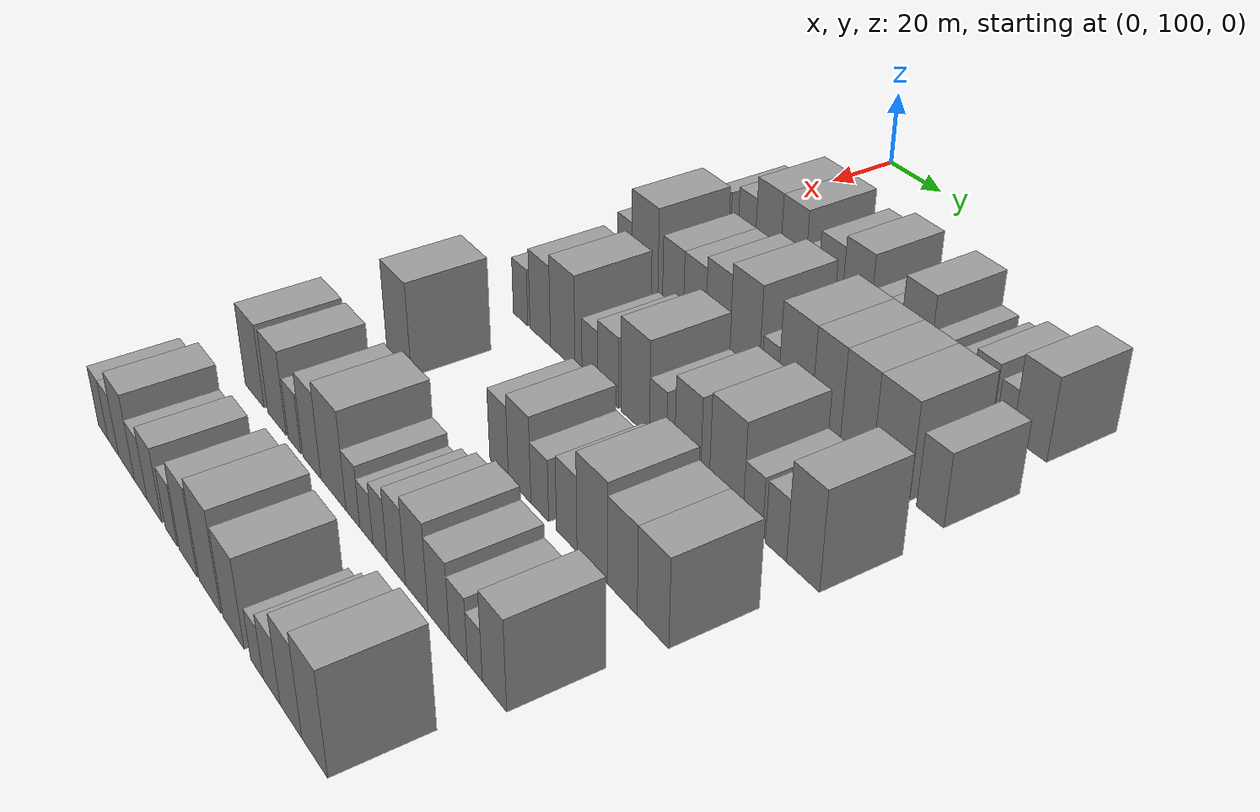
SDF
<sdf version="1.6">
 <world name="default">
  <model name="building_79">
   <static>1</static>
   <pose>50.0000 106.6499 0 0.000000 0.000000 0.000000</pose>
   <link name="link">
    <pose>0 0 6.00 0 0 0</pose>
    <collision name="collision"><geometry><box><size>20.0000 4.8474 12.0000</size></box></geometry></collision>
    <visual name="visual">
     <cast_shadows>0</cast_shadows>
     <geometry><box><size>20.0000 4.8474 12.0000</size></box></geometry>
     <material>
      <script>
       <uri>model://grey_wall/materials/scripts</uri>
       <uri>model://grey_wall/materials/textures</uri>
       <name>vrc/grey_wall</name>
      </script>
     </material>
    </visual>
   </link>
  </model>
  <model name="building_80">
   <static>1</static>
   <pose>50.0000 115.6817 0 0.000000 0.000000 0.000000</pose>
   <link name="link">
    <pose>0 0 7.50 0 0 0</pose>
    <collision name="collision"><geometry><box><size>20.0000 7.2161 15.0000</size></box></geometry></collision>
    <visual name="visual">
     <cast_shadows>0</cast_shadows>
     <geometry><box><size>20.0000 7.2161 15.0000</size></box></geometry>
     <material>
      <script>
       <uri>model://grey_wall/materials/scripts</uri>
       <uri>model://grey_wall/materials/textures</uri>
       <name>vrc/grey_wall</name>
      </script>
     </material>
    </visual>
   </link>
  </model>
  <model name="building_81">
   <static>1</static>
   <pose>50.0000 124.3143 0 0.000000 0.000000 0.000000</pose>
   <link name="link">
    <pose>0 0 10.50 0 0 0</pose>
    <collision name="collision"><geometry><box><size>20.0000 10.0491 21.0000</size></box></geometry></collision>
    <visual name="visual">
     <cast_shadows>0</cast_shadows>
     <geometry><box><size>20.0000 10.0491 21.0000</size></box></geometry>
     <material>
      <script>
       <uri>model://grey_wall/materials/scripts</uri>
       <uri>model://grey_wall/materials/textures</uri>
       <name>vrc/grey_wall</name>
      </script>
     </material>
    </visual>
   </link>
  </model>
  <model name="building_82">
   <static>1</static>
   <pose>50.0000 134.2049 0 0.000000 0.000000 0.000000</pose>
   <link name="link">
    <pose>0 0 10.50 0 0 0</pose>
    <collision name="collision"><geometry><box><size>20.0000 9.7322 21.0000</size></box></geometry></collision>
    <visual name="visual">
     <cast_shadows>0</cast_shadows>
     <geometry><box><size>20.0000 9.7322 21.0000</size></box></geometry>
     <material>
      <script>
       <uri>model://grey_wall/materials/scripts</uri>
       <uri>model://grey_wall/materials/textures</uri>
       <name>vrc/grey_wall</name>
      </script>
     </material>
    </visual>
   </link>
  </model>
  <model name="building_83">
   <static>1</static>
   <pose>50.0000 141.4858 0 0.000000 0.000000 0.000000</pose>
   <link name="link">
    <pose>0 0 6.00 0 0 0</pose>
    <collision name="collision"><geometry><box><size>20.0000 4.8296 12.0000</size></box></geometry></collision>
    <visual name="visual">
     <cast_shadows>0</cast_shadows>
     <geometry><box><size>20.0000 4.8296 12.0000</size></box></geometry>
     <material>
      <script>
       <uri>model://grey_wall/materials/scripts</uri>
       <uri>model://grey_wall/materials/textures</uri>
       <name>vrc/grey_wall</name>
      </script>
     </material>
    </visual>
   </link>
  </model>
  <model name="building_84">
   <static>1</static>
   <pose>50.0000 148.3853 0 0.000000 0.000000 0.000000</pose>
   <link name="link">
    <pose>0 0 9.00 0 0 0</pose>
    <collision name="collision"><geometry><box><size>20.0000 8.9695 18.0000</size></box></geometry></collision>
    <visual name="visual">
     <cast_shadows>0</cast_shadows>
     <geometry><box><size>20.0000 8.9695 18.0000</size></box></geometry>
     <material>
      <script>
       <uri>model://grey_wall/materials/scripts</uri>
       <uri>model://grey_wall/materials/textures</uri>
       <name>vrc/grey_wall</name>
      </script>
     </material>
    </visual>
   </link>
  </model>
  <model name="building_85">
   <static>1</static>
   <pose>50.0000 157.9243 0 0.000000 0.000000 0.000000</pose>
   <link name="link">
    <pose>0 0 10.50 0 0 0</pose>
    <collision name="collision"><geometry><box><size>20.0000 10.1083 21.0000</size></box></geometry></collision>
    <visual name="visual">
     <cast_shadows>0</cast_shadows>
     <geometry><box><size>20.0000 10.1083 21.0000</size></box></geometry>
     <material>
      <script>
       <uri>model://grey_wall/materials/scripts</uri>
       <uri>model://grey_wall/materials/textures</uri>
       <name>vrc/grey_wall</name>
      </script>
     </material>
    </visual>
   </link>
  </model>
  <model name="building_86">
   <static>1</static>
   <pose>50.0000 165.3802 0 0.000000 0.000000 0.000000</pose>
   <link name="link">
    <pose>0 0 6.00 0 0 0</pose>
    <collision name="collision"><geometry><box><size>20.0000 4.8035 12.0000</size></box></geometry></collision>
    <visual name="visual">
     <cast_shadows>0</cast_shadows>
     <geometry><box><size>20.0000 4.8035 12.0000</size></box></geometry>
     <material>
      <script>
       <uri>model://grey_wall/materials/scripts</uri>
       <uri>model://grey_wall/materials/textures</uri>
       <name>vrc/grey_wall</name>
      </script>
     </material>
    </visual>
   </link>
  </model>
  <model name="building_87">
   <static>1</static>
   <pose>50.0000 170.5307 0 0.000000 0.000000 0.000000</pose>
   <link name="link">
    <pose>0 0 6.00 0 0 0</pose>
    <collision name="collision"><geometry><box><size>20.0000 5.4974 12.0000</size></box></geometry></collision>
    <visual name="visual">
     <cast_shadows>0</cast_shadows>
     <geometry><box><size>20.0000 5.4974 12.0000</size></box></geometry>
     <material>
      <script>
       <uri>model://grey_wall/materials/scripts</uri>
       <uri>model://grey_wall/materials/textures</uri>
       <name>vrc/grey_wall</name>
      </script>
     </material>
    </visual>
   </link>
  </model>
  <model name="building_88">
   <static>1</static>
   <pose>50.0000 178.2708 0 0.000000 0.000000 0.000000</pose>
   <link name="link">
    <pose>0 0 10.50 0 0 0</pose>
    <collision name="collision"><geometry><box><size>20.0000 9.9829 21.0000</size></box></geometry></collision>
    <visual name="visual">
     <cast_shadows>0</cast_shadows>
     <geometry><box><size>20.0000 9.9829 21.0000</size></box></geometry>
     <material>
      <script>
       <uri>model://grey_wall/materials/scripts</uri>
       <uri>model://grey_wall/materials/textures</uri>
       <name>vrc/grey_wall</name>
      </script>
     </material>
    </visual>
   </link>
  </model>
  <model name="building_89">
   <static>1</static>
   <pose>50.0000 185.9252 0 0.000000 0.000000 0.000000</pose>
   <link name="link">
    <pose>0 0 6.00 0 0 0</pose>
    <collision name="collision"><geometry><box><size>20.0000 5.3258 12.0000</size></box></geometry></collision>
    <visual name="visual">
     <cast_shadows>0</cast_shadows>
     <geometry><box><size>20.0000 5.3258 12.0000</size></box></geometry>
     <material>
      <script>
       <uri>model://grey_wall/materials/scripts</uri>
       <uri>model://grey_wall/materials/textures</uri>
       <name>vrc/grey_wall</name>
      </script>
     </material>
    </visual>
   </link>
  </model>
  <model name="building_90">
   <static>1</static>
   <pose>50.0000 194.1657 0 0.000000 0.000000 0.000000</pose>
   <link name="link">
    <pose>0 0 6.00 0 0 0</pose>
    <collision name="collision"><geometry><box><size>20.0000 5.1552 12.0000</size></box></geometry></collision>
    <visual name="visual">
     <cast_shadows>0</cast_shadows>
     <geometry><box><size>20.0000 5.1552 12.0000</size></box></geometry>
     <material>
      <script>
       <uri>model://grey_wall/materials/scripts</uri>
       <uri>model://grey_wall/materials/textures</uri>
       <name>vrc/grey_wall</name>
      </script>
     </material>
    </visual>
   </link>
  </model>
  <model name="building_91">
   <static>1</static>
   <pose>50.0000 200.2985 0 0.000000 0.000000 0.000000</pose>
   <link name="link">
    <pose>0 0 7.50 0 0 0</pose>
    <collision name="collision"><geometry><box><size>20.0000 7.1105 15.0000</size></box></geometry></collision>
    <visual name="visual">
     <cast_shadows>0</cast_shadows>
     <geometry><box><size>20.0000 7.1105 15.0000</size></box></geometry>
     <material>
      <script>
       <uri>model://grey_wall/materials/scripts</uri>
       <uri>model://grey_wall/materials/textures</uri>
       <name>vrc/grey_wall</name>
      </script>
     </material>
    </visual>
   </link>
  </model>
  <model name="building_92">
   <static>1</static>
   <pose>50.0000 207.3197 0 0.000000 0.000000 0.000000</pose>
   <link name="link">
    <pose>0 0 6.00 0 0 0</pose>
    <collision name="collision"><geometry><box><size>20.0000 4.9317 12.0000</size></box></geometry></collision>
    <visual name="visual">
     <cast_shadows>0</cast_shadows>
     <geometry><box><size>20.0000 4.9317 12.0000</size></box></geometry>
     <material>
      <script>
       <uri>model://grey_wall/materials/scripts</uri>
       <uri>model://grey_wall/materials/textures</uri>
       <name>vrc/grey_wall</name>
      </script>
     </material>
    </visual>
   </link>
  </model>
  <model name="building_93">
   <static>1</static>
   <pose>50.0000 214.8084 0 0.000000 0.000000 0.000000</pose>
   <link name="link">
    <pose>0 0 10.50 0 0 0</pose>
    <collision name="collision"><geometry><box><size>20.0000 10.0457 21.0000</size></box></geometry></collision>
    <visual name="visual">
     <cast_shadows>0</cast_shadows>
     <geometry><box><size>20.0000 10.0457 21.0000</size></box></geometry>
     <material>
      <script>
       <uri>model://grey_wall/materials/scripts</uri>
       <uri>model://grey_wall/materials/textures</uri>
       <name>vrc/grey_wall</name>
      </script>
     </material>
    </visual>
   </link>
  </model>
  <model name="building_208">
   <static>1</static>
   <pose>82.0000 109.8524 0 0.000000 0.000000 0.000000</pose>
   <link name="link">
    <pose>0 0 7.50 0 0 0</pose>
    <collision name="collision"><geometry><box><size>20.0000 6.1634 15.0000</size></box></geometry></collision>
    <visual name="visual">
     <cast_shadows>0</cast_shadows>
     <geometry><box><size>20.0000 6.1634 15.0000</size></box></geometry>
     <material>
      <script>
       <uri>model://grey_wall/materials/scripts</uri>
       <uri>model://grey_wall/materials/textures</uri>
       <name>vrc/grey_wall</name>
      </script>
     </material>
    </visual>
   </link>
  </model>
  <model name="building_209">
   <static>1</static>
   <pose>82.0000 118.5898 0 0.000000 0.000000 0.000000</pose>
   <link name="link">
    <pose>0 0 12.00 0 0 0</pose>
    <collision name="collision"><geometry><box><size>20.0000 11.3113 24.0000</size></box></geometry></collision>
    <visual name="visual">
     <cast_shadows>0</cast_shadows>
     <geometry><box><size>20.0000 11.3113 24.0000</size></box></geometry>
     <material>
      <script>
       <uri>model://grey_wall/materials/scripts</uri>
       <uri>model://grey_wall/materials/textures</uri>
       <name>vrc/grey_wall</name>
      </script>
     </material>
    </visual>
   </link>
  </model>
  <model name="building_210">
   <static>1</static>
   <pose>82.0000 130.5732 0 0.000000 0.000000 0.000000</pose>
   <link name="link">
    <pose>0 0 9.00 0 0 0</pose>
    <collision name="collision"><geometry><box><size>20.0000 8.6554 18.0000</size></box></geometry></collision>
    <visual name="visual">
     <cast_shadows>0</cast_shadows>
     <geometry><box><size>20.0000 8.6554 18.0000</size></box></geometry>
     <material>
      <script>
       <uri>model://grey_wall/materials/scripts</uri>
       <uri>model://grey_wall/materials/textures</uri>
       <name>vrc/grey_wall</name>
      </script>
     </material>
    </visual>
   </link>
  </model>
  <model name="building_211">
   <static>1</static>
   <pose>82.0000 139.3551 0 0.000000 0.000000 0.000000</pose>
   <link name="link">
    <pose>0 0 9.00 0 0 0</pose>
    <collision name="collision"><geometry><box><size>20.0000 8.9084 18.0000</size></box></geometry></collision>
    <visual name="visual">
     <cast_shadows>0</cast_shadows>
     <geometry><box><size>20.0000 8.9084 18.0000</size></box></geometry>
     <material>
      <script>
       <uri>model://grey_wall/materials/scripts</uri>
       <uri>model://grey_wall/materials/textures</uri>
       <name>vrc/grey_wall</name>
      </script>
     </material>
    </visual>
   </link>
  </model>
  <model name="building_212">
   <static>1</static>
   <pose>82.0000 148.4932 0 0.000000 0.000000 0.000000</pose>
   <link name="link">
    <pose>0 0 10.50 0 0 0</pose>
    <collision name="collision"><geometry><box><size>20.0000 9.3679 21.0000</size></box></geometry></collision>
    <visual name="visual">
     <cast_shadows>0</cast_shadows>
     <geometry><box><size>20.0000 9.3679 21.0000</size></box></geometry>
     <material>
      <script>
       <uri>model://grey_wall/materials/scripts</uri>
       <uri>model://grey_wall/materials/textures</uri>
       <name>vrc/grey_wall</name>
      </script>
     </material>
    </visual>
   </link>
  </model>
  <model name="building_213">
   <static>1</static>
   <pose>82.0000 158.6790 0 0.000000 0.000000 0.000000</pose>
   <link name="link">
    <pose>0 0 12.00 0 0 0</pose>
    <collision name="collision"><geometry><box><size>20.0000 11.0038 24.0000</size></box></geometry></collision>
    <visual name="visual">
     <cast_shadows>0</cast_shadows>
     <geometry><box><size>20.0000 11.0038 24.0000</size></box></geometry>
     <material>
      <script>
       <uri>model://grey_wall/materials/scripts</uri>
       <uri>model://grey_wall/materials/textures</uri>
       <name>vrc/grey_wall</name>
      </script>
     </material>
    </visual>
   </link>
  </model>
  <model name="building_214">
   <static>1</static>
   <pose>82.0000 168.1587 0 0.000000 0.000000 0.000000</pose>
   <link name="link">
    <pose>0 0 6.00 0 0 0</pose>
    <collision name="collision"><geometry><box><size>20.0000 5.9555 12.0000</size></box></geometry></collision>
    <visual name="visual">
     <cast_shadows>0</cast_shadows>
     <geometry><box><size>20.0000 5.9555 12.0000</size></box></geometry>
     <material>
      <script>
       <uri>model://grey_wall/materials/scripts</uri>
       <uri>model://grey_wall/materials/textures</uri>
       <name>vrc/grey_wall</name>
      </script>
     </material>
    </visual>
   </link>
  </model>
  <model name="building_215">
   <static>1</static>
   <pose>82.0000 176.9560 0 0.000000 0.000000 0.000000</pose>
   <link name="link">
    <pose>0 0 12.00 0 0 0</pose>
    <collision name="collision"><geometry><box><size>20.0000 11.6392 24.0000</size></box></geometry></collision>
    <visual name="visual">
     <cast_shadows>0</cast_shadows>
     <geometry><box><size>20.0000 11.6392 24.0000</size></box></geometry>
     <material>
      <script>
       <uri>model://grey_wall/materials/scripts</uri>
       <uri>model://grey_wall/materials/textures</uri>
       <name>vrc/grey_wall</name>
      </script>
     </material>
    </visual>
   </link>
  </model>
  <model name="building_216">
   <static>1</static>
   <pose>82.0000 187.6401 0 0.000000 0.000000 0.000000</pose>
   <link name="link">
    <pose>0 0 12.00 0 0 0</pose>
    <collision name="collision"><geometry><box><size>20.0000 9.7292 24.0000</size></box></geometry></collision>
    <visual name="visual">
     <cast_shadows>0</cast_shadows>
     <geometry><box><size>20.0000 9.7292 24.0000</size></box></geometry>
     <material>
      <script>
       <uri>model://grey_wall/materials/scripts</uri>
       <uri>model://grey_wall/materials/textures</uri>
       <name>vrc/grey_wall</name>
      </script>
     </material>
    </visual>
   </link>
  </model>
  <model name="building_217">
   <static>1</static>
   <pose>82.0000 197.6625 0 0.000000 0.000000 0.000000</pose>
   <link name="link">
    <pose>0 0 12.00 0 0 0</pose>
    <collision name="collision"><geometry><box><size>20.0000 10.3156 24.0000</size></box></geometry></collision>
    <visual name="visual">
     <cast_shadows>0</cast_shadows>
     <geometry><box><size>20.0000 10.3156 24.0000</size></box></geometry>
     <material>
      <script>
       <uri>model://grey_wall/materials/scripts</uri>
       <uri>model://grey_wall/materials/textures</uri>
       <name>vrc/grey_wall</name>
      </script>
     </material>
    </visual>
   </link>
  </model>
  <model name="building_218">
   <static>1</static>
   <pose>82.0000 208.6735 0 0.000000 0.000000 0.000000</pose>
   <link name="link">
    <pose>0 0 12.00 0 0 0</pose>
    <collision name="collision"><geometry><box><size>20.0000 11.7064 24.0000</size></box></geometry></collision>
    <visual name="visual">
     <cast_shadows>0</cast_shadows>
     <geometry><box><size>20.0000 11.7064 24.0000</size></box></geometry>
     <material>
      <script>
       <uri>model://grey_wall/materials/scripts</uri>
       <uri>model://grey_wall/materials/textures</uri>
       <name>vrc/grey_wall</name>
      </script>
     </material>
    </visual>
   </link>
  </model>
  <model name="building_219">
   <static>1</static>
   <pose>82.0000 220.5363 0 0.000000 0.000000 0.000000</pose>
   <link name="link">
    <pose>0 0 9.00 0 0 0</pose>
    <collision name="collision"><geometry><box><size>20.0000 8.0192 18.0000</size></box></geometry></collision>
    <visual name="visual">
     <cast_shadows>0</cast_shadows>
     <geometry><box><size>20.0000 8.0192 18.0000</size></box></geometry>
     <material>
      <script>
       <uri>model://grey_wall/materials/scripts</uri>
       <uri>model://grey_wall/materials/textures</uri>
       <name>vrc/grey_wall</name>
      </script>
     </material>
    </visual>
   </link>
  </model>
  <model name="building_335">
   <static>1</static>
   <pose>114.0000 115.1809 0 0.000000 0.000000 0.000000</pose>
   <link name="link">
    <pose>0 0 7.50 0 0 0</pose>
    <collision name="collision"><geometry><box><size>20.0000 6.7119 15.0000</size></box></geometry></collision>
    <visual name="visual">
     <cast_shadows>0</cast_shadows>
     <geometry><box><size>20.0000 6.7119 15.0000</size></box></geometry>
     <material>
      <script>
       <uri>model://grey_wall/materials/scripts</uri>
       <uri>model://grey_wall/materials/textures</uri>
       <name>vrc/grey_wall</name>
      </script>
     </material>
    </visual>
   </link>
  </model>
  <model name="building_336">
   <static>1</static>
   <pose>114.0000 124.1312 0 0.000000 0.000000 0.000000</pose>
   <link name="link">
    <pose>0 0 10.50 0 0 0</pose>
    <collision name="collision"><geometry><box><size>20.0000 9.1886 21.0000</size></box></geometry></collision>
    <visual name="visual">
     <cast_shadows>0</cast_shadows>
     <geometry><box><size>20.0000 9.1886 21.0000</size></box></geometry>
     <material>
      <script>
       <uri>model://grey_wall/materials/scripts</uri>
       <uri>model://grey_wall/materials/textures</uri>
       <name>vrc/grey_wall</name>
      </script>
     </material>
    </visual>
   </link>
  </model>
  <model name="building_337">
   <static>1</static>
   <pose>114.0000 134.0255 0 0.000000 0.000000 0.000000</pose>
   <link name="link">
    <pose>0 0 12.00 0 0 0</pose>
    <collision name="collision"><geometry><box><size>20.0000 10.6000 24.0000</size></box></geometry></collision>
    <visual name="visual">
     <cast_shadows>0</cast_shadows>
     <geometry><box><size>20.0000 10.6000 24.0000</size></box></geometry>
     <material>
      <script>
       <uri>model://grey_wall/materials/scripts</uri>
       <uri>model://grey_wall/materials/textures</uri>
       <name>vrc/grey_wall</name>
      </script>
     </material>
    </visual>
   </link>
  </model>
  <model name="building_338">
   <static>1</static>
   <pose>114.0000 145.5345 0 0.000000 0.000000 0.000000</pose>
   <link name="link">
    <pose>0 0 7.50 0 0 0</pose>
    <collision name="collision"><geometry><box><size>20.0000 6.4181 15.0000</size></box></geometry></collision>
    <visual name="visual">
     <cast_shadows>0</cast_shadows>
     <geometry><box><size>20.0000 6.4181 15.0000</size></box></geometry>
     <material>
      <script>
       <uri>model://grey_wall/materials/scripts</uri>
       <uri>model://grey_wall/materials/textures</uri>
       <name>vrc/grey_wall</name>
      </script>
     </material>
    </visual>
   </link>
  </model>
  <model name="building_339">
   <static>1</static>
   <pose>114.0000 152.9391 0 0.000000 0.000000 0.000000</pose>
   <link name="link">
    <pose>0 0 9.00 0 0 0</pose>
    <collision name="collision"><geometry><box><size>20.0000 8.3911 18.0000</size></box></geometry></collision>
    <visual name="visual">
     <cast_shadows>0</cast_shadows>
     <geometry><box><size>20.0000 8.3911 18.0000</size></box></geometry>
     <material>
      <script>
       <uri>model://grey_wall/materials/scripts</uri>
       <uri>model://grey_wall/materials/textures</uri>
       <name>vrc/grey_wall</name>
      </script>
     </material>
    </visual>
   </link>
  </model>
  <model name="building_340">
   <static>1</static>
   <pose>114.0000 163.6487 0 0.000000 0.000000 0.000000</pose>
   <link name="link">
    <pose>0 0 12.00 0 0 0</pose>
    <collision name="collision"><geometry><box><size>20.0000 11.0280 24.0000</size></box></geometry></collision>
    <visual name="visual">
     <cast_shadows>0</cast_shadows>
     <geometry><box><size>20.0000 11.0280 24.0000</size></box></geometry>
     <material>
      <script>
       <uri>model://grey_wall/materials/scripts</uri>
       <uri>model://grey_wall/materials/textures</uri>
       <name>vrc/grey_wall</name>
      </script>
     </material>
    </visual>
   </link>
  </model>
  <model name="building_341">
   <static>1</static>
   <pose>114.0000 172.3379 0 0.000000 0.000000 0.000000</pose>
   <link name="link">
    <pose>0 0 7.50 0 0 0</pose>
    <collision name="collision"><geometry><box><size>20.0000 6.3503 15.0000</size></box></geometry></collision>
    <visual name="visual">
     <cast_shadows>0</cast_shadows>
     <geometry><box><size>20.0000 6.3503 15.0000</size></box></geometry>
     <material>
      <script>
       <uri>model://grey_wall/materials/scripts</uri>
       <uri>model://grey_wall/materials/textures</uri>
       <name>vrc/grey_wall</name>
      </script>
     </material>
    </visual>
   </link>
  </model>
  <model name="building_342">
   <static>1</static>
   <pose>114.0000 183.1485 0 0.000000 0.000000 0.000000</pose>
   <link name="link">
    <pose>0 0 10.50 0 0 0</pose>
    <collision name="collision"><geometry><box><size>20.0000 9.2711 21.0000</size></box></geometry></collision>
    <visual name="visual">
     <cast_shadows>0</cast_shadows>
     <geometry><box><size>20.0000 9.2711 21.0000</size></box></geometry>
     <material>
      <script>
       <uri>model://grey_wall/materials/scripts</uri>
       <uri>model://grey_wall/materials/textures</uri>
       <name>vrc/grey_wall</name>
      </script>
     </material>
    </visual>
   </link>
  </model>
  <model name="building_343">
   <static>1</static>
   <pose>114.0000 196.5403 0 0.000000 0.000000 0.000000</pose>
   <link name="link">
    <pose>0 0 12.00 0 0 0</pose>
    <collision name="collision"><geometry><box><size>20.0000 11.5125 24.0000</size></box></geometry></collision>
    <visual name="visual">
     <cast_shadows>0</cast_shadows>
     <geometry><box><size>20.0000 11.5125 24.0000</size></box></geometry>
     <material>
      <script>
       <uri>model://grey_wall/materials/scripts</uri>
       <uri>model://grey_wall/materials/textures</uri>
       <name>vrc/grey_wall</name>
      </script>
     </material>
    </visual>
   </link>
  </model>
  <model name="building_344">
   <static>1</static>
   <pose>114.0000 205.4715 0 0.000000 0.000000 0.000000</pose>
   <link name="link">
    <pose>0 0 7.50 0 0 0</pose>
    <collision name="collision"><geometry><box><size>20.0000 6.3498 15.0000</size></box></geometry></collision>
    <visual name="visual">
     <cast_shadows>0</cast_shadows>
     <geometry><box><size>20.0000 6.3498 15.0000</size></box></geometry>
     <material>
      <script>
       <uri>model://grey_wall/materials/scripts</uri>
       <uri>model://grey_wall/materials/textures</uri>
       <name>vrc/grey_wall</name>
      </script>
     </material>
    </visual>
   </link>
  </model>
  <model name="building_345">
   <static>1</static>
   <pose>114.0000 212.9969 0 0.000000 0.000000 0.000000</pose>
   <link name="link">
    <pose>0 0 7.50 0 0 0</pose>
    <collision name="collision"><geometry><box><size>20.0000 6.7010 15.0000</size></box></geometry></collision>
    <visual name="visual">
     <cast_shadows>0</cast_shadows>
     <geometry><box><size>20.0000 6.7010 15.0000</size></box></geometry>
     <material>
      <script>
       <uri>model://grey_wall/materials/scripts</uri>
       <uri>model://grey_wall/materials/textures</uri>
       <name>vrc/grey_wall</name>
      </script>
     </material>
    </visual>
   </link>
  </model>
  <model name="building_346">
   <static>1</static>
   <pose>114.0000 221.4097 0 0.000000 0.000000 0.000000</pose>
   <link name="link">
    <pose>0 0 12.00 0 0 0</pose>
    <collision name="collision"><geometry><box><size>20.0000 10.1246 24.0000</size></box></geometry></collision>
    <visual name="visual">
     <cast_shadows>0</cast_shadows>
     <geometry><box><size>20.0000 10.1246 24.0000</size></box></geometry>
     <material>
      <script>
       <uri>model://grey_wall/materials/scripts</uri>
       <uri>model://grey_wall/materials/textures</uri>
       <name>vrc/grey_wall</name>
      </script>
     </material>
    </visual>
   </link>
  </model>
  <model name="building_450">
   <static>1</static>
   <pose>146.0000 116.7327 0 0.000000 0.000000 0.000000</pose>
   <link name="link">
    <pose>0 0 12.00 0 0 0</pose>
    <collision name="collision"><geometry><box><size>20.0000 11.9639 24.0000</size></box></geometry></collision>
    <visual name="visual">
     <cast_shadows>0</cast_shadows>
     <geometry><box><size>20.0000 11.9639 24.0000</size></box></geometry>
     <material>
      <script>
       <uri>model://grey_wall/materials/scripts</uri>
       <uri>model://grey_wall/materials/textures</uri>
       <name>vrc/grey_wall</name>
      </script>
     </material>
    </visual>
   </link>
  </model>
  <model name="building_451">
   <static>1</static>
   <pose>146.0000 162.2679 0 0.000000 0.000000 0.000000</pose>
   <link name="link">
    <pose>0 0 9.00 0 0 0</pose>
    <collision name="collision"><geometry><box><size>20.0000 7.7021 18.0000</size></box></geometry></collision>
    <visual name="visual">
     <cast_shadows>0</cast_shadows>
     <geometry><box><size>20.0000 7.7021 18.0000</size></box></geometry>
     <material>
      <script>
       <uri>model://grey_wall/materials/scripts</uri>
       <uri>model://grey_wall/materials/textures</uri>
       <name>vrc/grey_wall</name>
      </script>
     </material>
    </visual>
   </link>
  </model>
  <model name="building_452">
   <static>1</static>
   <pose>146.0000 170.6285 0 0.000000 0.000000 0.000000</pose>
   <link name="link">
    <pose>0 0 10.50 0 0 0</pose>
    <collision name="collision"><geometry><box><size>20.0000 9.0191 21.0000</size></box></geometry></collision>
    <visual name="visual">
     <cast_shadows>0</cast_shadows>
     <geometry><box><size>20.0000 9.0191 21.0000</size></box></geometry>
     <material>
      <script>
       <uri>model://grey_wall/materials/scripts</uri>
       <uri>model://grey_wall/materials/textures</uri>
       <name>vrc/grey_wall</name>
      </script>
     </material>
    </visual>
   </link>
  </model>
  <model name="building_453">
   <static>1</static>
   <pose>146.0000 178.5805 0 0.000000 0.000000 0.000000</pose>
   <link name="link">
    <pose>0 0 7.50 0 0 0</pose>
    <collision name="collision"><geometry><box><size>20.0000 6.8849 15.0000</size></box></geometry></collision>
    <visual name="visual">
     <cast_shadows>0</cast_shadows>
     <geometry><box><size>20.0000 6.8849 15.0000</size></box></geometry>
     <material>
      <script>
       <uri>model://grey_wall/materials/scripts</uri>
       <uri>model://grey_wall/materials/textures</uri>
       <name>vrc/grey_wall</name>
      </script>
     </material>
    </visual>
   </link>
  </model>
  <model name="building_454">
   <static>1</static>
   <pose>146.0000 188.8323 0 0.000000 0.000000 0.000000</pose>
   <link name="link">
    <pose>0 0 9.00 0 0 0</pose>
    <collision name="collision"><geometry><box><size>20.0000 7.6189 18.0000</size></box></geometry></collision>
    <visual name="visual">
     <cast_shadows>0</cast_shadows>
     <geometry><box><size>20.0000 7.6189 18.0000</size></box></geometry>
     <material>
      <script>
       <uri>model://grey_wall/materials/scripts</uri>
       <uri>model://grey_wall/materials/textures</uri>
       <name>vrc/grey_wall</name>
      </script>
     </material>
    </visual>
   </link>
  </model>
  <model name="building_455">
   <static>1</static>
   <pose>146.0000 198.1766 0 0.000000 0.000000 0.000000</pose>
   <link name="link">
    <pose>0 0 12.00 0 0 0</pose>
    <collision name="collision"><geometry><box><size>20.0000 11.0697 24.0000</size></box></geometry></collision>
    <visual name="visual">
     <cast_shadows>0</cast_shadows>
     <geometry><box><size>20.0000 11.0697 24.0000</size></box></geometry>
     <material>
      <script>
       <uri>model://grey_wall/materials/scripts</uri>
       <uri>model://grey_wall/materials/textures</uri>
       <name>vrc/grey_wall</name>
      </script>
     </material>
    </visual>
   </link>
  </model>
  <model name="building_456">
   <static>1</static>
   <pose>146.0000 208.7052 0 0.000000 0.000000 0.000000</pose>
   <link name="link">
    <pose>0 0 10.50 0 0 0</pose>
    <collision name="collision"><geometry><box><size>20.0000 9.9875 21.0000</size></box></geometry></collision>
    <visual name="visual">
     <cast_shadows>0</cast_shadows>
     <geometry><box><size>20.0000 9.9875 21.0000</size></box></geometry>
     <material>
      <script>
       <uri>model://grey_wall/materials/scripts</uri>
       <uri>model://grey_wall/materials/textures</uri>
       <name>vrc/grey_wall</name>
      </script>
     </material>
    </visual>
   </link>
  </model>
  <model name="building_457">
   <static>1</static>
   <pose>146.0000 218.8405 0 0.000000 0.000000 0.000000</pose>
   <link name="link">
    <pose>0 0 10.50 0 0 0</pose>
    <collision name="collision"><geometry><box><size>20.0000 10.2830 21.0000</size></box></geometry></collision>
    <visual name="visual">
     <cast_shadows>0</cast_shadows>
     <geometry><box><size>20.0000 10.2830 21.0000</size></box></geometry>
     <material>
      <script>
       <uri>model://grey_wall/materials/scripts</uri>
       <uri>model://grey_wall/materials/textures</uri>
       <name>vrc/grey_wall</name>
      </script>
     </material>
    </visual>
   </link>
  </model>
  <model name="building_571">
   <static>1</static>
   <pose>178.0000 111.3668 0 0.000000 0.000000 0.000000</pose>
   <link name="link">
    <pose>0 0 10.50 0 0 0</pose>
    <collision name="collision"><geometry><box><size>20.0000 10.4011 21.0000</size></box></geometry></collision>
    <visual name="visual">
     <cast_shadows>0</cast_shadows>
     <geometry><box><size>20.0000 10.4011 21.0000</size></box></geometry>
     <material>
      <script>
       <uri>model://grey_wall/materials/scripts</uri>
       <uri>model://grey_wall/materials/textures</uri>
       <name>vrc/grey_wall</name>
      </script>
     </material>
    </visual>
   </link>
  </model>
  <model name="building_572">
   <static>1</static>
   <pose>178.0000 123.4785 0 0.000000 0.000000 0.000000</pose>
   <link name="link">
    <pose>0 0 10.50 0 0 0</pose>
    <collision name="collision"><geometry><box><size>20.0000 9.8222 21.0000</size></box></geometry></collision>
    <visual name="visual">
     <cast_shadows>0</cast_shadows>
     <geometry><box><size>20.0000 9.8222 21.0000</size></box></geometry>
     <material>
      <script>
       <uri>model://grey_wall/materials/scripts</uri>
       <uri>model://grey_wall/materials/textures</uri>
       <name>vrc/grey_wall</name>
      </script>
     </material>
    </visual>
   </link>
  </model>
  <model name="building_573">
   <static>1</static>
   <pose>178.0000 132.6878 0 0.000000 0.000000 0.000000</pose>
   <link name="link">
    <pose>0 0 7.50 0 0 0</pose>
    <collision name="collision"><geometry><box><size>20.0000 6.5964 15.0000</size></box></geometry></collision>
    <visual name="visual">
     <cast_shadows>0</cast_shadows>
     <geometry><box><size>20.0000 6.5964 15.0000</size></box></geometry>
     <material>
      <script>
       <uri>model://grey_wall/materials/scripts</uri>
       <uri>model://grey_wall/materials/textures</uri>
       <name>vrc/grey_wall</name>
      </script>
     </material>
    </visual>
   </link>
  </model>
  <model name="building_574">
   <static>1</static>
   <pose>178.0000 141.4382 0 0.000000 0.000000 0.000000</pose>
   <link name="link">
    <pose>0 0 10.50 0 0 0</pose>
    <collision name="collision"><geometry><box><size>20.0000 8.9043 21.0000</size></box></geometry></collision>
    <visual name="visual">
     <cast_shadows>0</cast_shadows>
     <geometry><box><size>20.0000 8.9043 21.0000</size></box></geometry>
     <material>
      <script>
       <uri>model://grey_wall/materials/scripts</uri>
       <uri>model://grey_wall/materials/textures</uri>
       <name>vrc/grey_wall</name>
      </script>
     </material>
    </visual>
   </link>
  </model>
  <model name="building_575">
   <static>1</static>
   <pose>178.0000 151.8534 0 0.000000 0.000000 0.000000</pose>
   <link name="link">
    <pose>0 0 12.00 0 0 0</pose>
    <collision name="collision"><geometry><box><size>20.0000 11.9261 24.0000</size></box></geometry></collision>
    <visual name="visual">
     <cast_shadows>0</cast_shadows>
     <geometry><box><size>20.0000 11.9261 24.0000</size></box></geometry>
     <material>
      <script>
       <uri>model://grey_wall/materials/scripts</uri>
       <uri>model://grey_wall/materials/textures</uri>
       <name>vrc/grey_wall</name>
      </script>
     </material>
    </visual>
   </link>
  </model>
  <model name="building_576">
   <static>1</static>
   <pose>178.0000 160.9690 0 0.000000 0.000000 0.000000</pose>
   <link name="link">
    <pose>0 0 7.50 0 0 0</pose>
    <collision name="collision"><geometry><box><size>20.0000 6.3051 15.0000</size></box></geometry></collision>
    <visual name="visual">
     <cast_shadows>0</cast_shadows>
     <geometry><box><size>20.0000 6.3051 15.0000</size></box></geometry>
     <material>
      <script>
       <uri>model://grey_wall/materials/scripts</uri>
       <uri>model://grey_wall/materials/textures</uri>
       <name>vrc/grey_wall</name>
      </script>
     </material>
    </visual>
   </link>
  </model>
  <model name="building_577">
   <static>1</static>
   <pose>178.0000 167.0183 0 0.000000 0.000000 0.000000</pose>
   <link name="link">
    <pose>0 0 6.00 0 0 0</pose>
    <collision name="collision"><geometry><box><size>20.0000 5.7934 12.0000</size></box></geometry></collision>
    <visual name="visual">
     <cast_shadows>0</cast_shadows>
     <geometry><box><size>20.0000 5.7934 12.0000</size></box></geometry>
     <material>
      <script>
       <uri>model://grey_wall/materials/scripts</uri>
       <uri>model://grey_wall/materials/textures</uri>
       <name>vrc/grey_wall</name>
      </script>
     </material>
    </visual>
   </link>
  </model>
  <model name="building_578">
   <static>1</static>
   <pose>178.0000 173.0306 0 0.000000 0.000000 0.000000</pose>
   <link name="link">
    <pose>0 0 7.50 0 0 0</pose>
    <collision name="collision"><geometry><box><size>20.0000 6.2312 15.0000</size></box></geometry></collision>
    <visual name="visual">
     <cast_shadows>0</cast_shadows>
     <geometry><box><size>20.0000 6.2312 15.0000</size></box></geometry>
     <material>
      <script>
       <uri>model://grey_wall/materials/scripts</uri>
       <uri>model://grey_wall/materials/textures</uri>
       <name>vrc/grey_wall</name>
      </script>
     </material>
    </visual>
   </link>
  </model>
  <model name="building_579">
   <static>1</static>
   <pose>178.0000 180.0033 0 0.000000 0.000000 0.000000</pose>
   <link name="link">
    <pose>0 0 9.00 0 0 0</pose>
    <collision name="collision"><geometry><box><size>20.0000 7.7144 18.0000</size></box></geometry></collision>
    <visual name="visual">
     <cast_shadows>0</cast_shadows>
     <geometry><box><size>20.0000 7.7144 18.0000</size></box></geometry>
     <material>
      <script>
       <uri>model://grey_wall/materials/scripts</uri>
       <uri>model://grey_wall/materials/textures</uri>
       <name>vrc/grey_wall</name>
      </script>
     </material>
    </visual>
   </link>
  </model>
  <model name="building_580">
   <static>1</static>
   <pose>178.0000 188.4040 0 0.000000 0.000000 0.000000</pose>
   <link name="link">
    <pose>0 0 10.50 0 0 0</pose>
    <collision name="collision"><geometry><box><size>20.0000 9.0870 21.0000</size></box></geometry></collision>
    <visual name="visual">
     <cast_shadows>0</cast_shadows>
     <geometry><box><size>20.0000 9.0870 21.0000</size></box></geometry>
     <material>
      <script>
       <uri>model://grey_wall/materials/scripts</uri>
       <uri>model://grey_wall/materials/textures</uri>
       <name>vrc/grey_wall</name>
      </script>
     </material>
    </visual>
   </link>
  </model>
  <model name="building_581">
   <static>1</static>
   <pose>178.0000 197.1548 0 0.000000 0.000000 0.000000</pose>
   <link name="link">
    <pose>0 0 9.00 0 0 0</pose>
    <collision name="collision"><geometry><box><size>20.0000 8.4147 18.0000</size></box></geometry></collision>
    <visual name="visual">
     <cast_shadows>0</cast_shadows>
     <geometry><box><size>20.0000 8.4147 18.0000</size></box></geometry>
     <material>
      <script>
       <uri>model://grey_wall/materials/scripts</uri>
       <uri>model://grey_wall/materials/textures</uri>
       <name>vrc/grey_wall</name>
      </script>
     </material>
    </visual>
   </link>
  </model>
  <model name="building_582">
   <static>1</static>
   <pose>178.0000 204.7232 0 0.000000 0.000000 0.000000</pose>
   <link name="link">
    <pose>0 0 7.50 0 0 0</pose>
    <collision name="collision"><geometry><box><size>20.0000 6.7220 15.0000</size></box></geometry></collision>
    <visual name="visual">
     <cast_shadows>0</cast_shadows>
     <geometry><box><size>20.0000 6.7220 15.0000</size></box></geometry>
     <material>
      <script>
       <uri>model://grey_wall/materials/scripts</uri>
       <uri>model://grey_wall/materials/textures</uri>
       <name>vrc/grey_wall</name>
      </script>
     </material>
    </visual>
   </link>
  </model>
  <model name="building_583">
   <static>1</static>
   <pose>178.0000 210.8169 0 0.000000 0.000000 0.000000</pose>
   <link name="link">
    <pose>0 0 6.00 0 0 0</pose>
    <collision name="collision"><geometry><box><size>20.0000 5.4655 12.0000</size></box></geometry></collision>
    <visual name="visual">
     <cast_shadows>0</cast_shadows>
     <geometry><box><size>20.0000 5.4655 12.0000</size></box></geometry>
     <material>
      <script>
       <uri>model://grey_wall/materials/scripts</uri>
       <uri>model://grey_wall/materials/textures</uri>
       <name>vrc/grey_wall</name>
      </script>
     </material>
    </visual>
   </link>
  </model>
  <model name="building_584">
   <static>1</static>
   <pose>178.0000 217.8485 0 0.000000 0.000000 0.000000</pose>
   <link name="link">
    <pose>0 0 10.50 0 0 0</pose>
    <collision name="collision"><geometry><box><size>20.0000 8.5977 21.0000</size></box></geometry></collision>
    <visual name="visual">
     <cast_shadows>0</cast_shadows>
     <geometry><box><size>20.0000 8.5977 21.0000</size></box></geometry>
     <material>
      <script>
       <uri>model://grey_wall/materials/scripts</uri>
       <uri>model://grey_wall/materials/textures</uri>
       <name>vrc/grey_wall</name>
      </script>
     </material>
    </visual>
   </link>
  </model>
  <model name="building_695">
   <static>1</static>
   <pose>210.0000 106.8811 0 0.000000 0.000000 0.000000</pose>
   <link name="link">
    <pose>0 0 7.50 0 0 0</pose>
    <collision name="collision"><geometry><box><size>20.0000 6.2572 15.0000</size></box></geometry></collision>
    <visual name="visual">
     <cast_shadows>0</cast_shadows>
     <geometry><box><size>20.0000 6.2572 15.0000</size></box></geometry>
     <material>
      <script>
       <uri>model://grey_wall/materials/scripts</uri>
       <uri>model://grey_wall/materials/textures</uri>
       <name>vrc/grey_wall</name>
      </script>
     </material>
    </visual>
   </link>
  </model>
  <model name="building_696">
   <static>1</static>
   <pose>210.0000 113.3355 0 0.000000 0.000000 0.000000</pose>
   <link name="link">
    <pose>0 0 7.50 0 0 0</pose>
    <collision name="collision"><geometry><box><size>20.0000 6.6515 15.0000</size></box></geometry></collision>
    <visual name="visual">
     <cast_shadows>0</cast_shadows>
     <geometry><box><size>20.0000 6.6515 15.0000</size></box></geometry>
     <material>
      <script>
       <uri>model://grey_wall/materials/scripts</uri>
       <uri>model://grey_wall/materials/textures</uri>
       <name>vrc/grey_wall</name>
      </script>
     </material>
    </visual>
   </link>
  </model>
  <model name="building_697">
   <static>1</static>
   <pose>210.0000 121.4853 0 0.000000 0.000000 0.000000</pose>
   <link name="link">
    <pose>0 0 10.50 0 0 0</pose>
    <collision name="collision"><geometry><box><size>20.0000 9.6481 21.0000</size></box></geometry></collision>
    <visual name="visual">
     <cast_shadows>0</cast_shadows>
     <geometry><box><size>20.0000 9.6481 21.0000</size></box></geometry>
     <material>
      <script>
       <uri>model://grey_wall/materials/scripts</uri>
       <uri>model://grey_wall/materials/textures</uri>
       <name>vrc/grey_wall</name>
      </script>
     </material>
    </visual>
   </link>
  </model>
  <model name="building_698">
   <static>1</static>
   <pose>210.0000 130.0188 0 0.000000 0.000000 0.000000</pose>
   <link name="link">
    <pose>0 0 7.50 0 0 0</pose>
    <collision name="collision"><geometry><box><size>20.0000 7.4190 15.0000</size></box></geometry></collision>
    <visual name="visual">
     <cast_shadows>0</cast_shadows>
     <geometry><box><size>20.0000 7.4190 15.0000</size></box></geometry>
     <material>
      <script>
       <uri>model://grey_wall/materials/scripts</uri>
       <uri>model://grey_wall/materials/textures</uri>
       <name>vrc/grey_wall</name>
      </script>
     </material>
    </visual>
   </link>
  </model>
  <model name="building_699">
   <static>1</static>
   <pose>210.0000 137.9049 0 0.000000 0.000000 0.000000</pose>
   <link name="link">
    <pose>0 0 9.00 0 0 0</pose>
    <collision name="collision"><geometry><box><size>20.0000 8.3531 18.0000</size></box></geometry></collision>
    <visual name="visual">
     <cast_shadows>0</cast_shadows>
     <geometry><box><size>20.0000 8.3531 18.0000</size></box></geometry>
     <material>
      <script>
       <uri>model://grey_wall/materials/scripts</uri>
       <uri>model://grey_wall/materials/textures</uri>
       <name>vrc/grey_wall</name>
      </script>
     </material>
    </visual>
   </link>
  </model>
  <model name="building_700">
   <static>1</static>
   <pose>210.0000 147.3625 0 0.000000 0.000000 0.000000</pose>
   <link name="link">
    <pose>0 0 7.50 0 0 0</pose>
    <collision name="collision"><geometry><box><size>20.0000 6.5619 15.0000</size></box></geometry></collision>
    <visual name="visual">
     <cast_shadows>0</cast_shadows>
     <geometry><box><size>20.0000 6.5619 15.0000</size></box></geometry>
     <material>
      <script>
       <uri>model://grey_wall/materials/scripts</uri>
       <uri>model://grey_wall/materials/textures</uri>
       <name>vrc/grey_wall</name>
      </script>
     </material>
    </visual>
   </link>
  </model>
  <model name="building_701">
   <static>1</static>
   <pose>210.0000 156.3603 0 0.000000 0.000000 0.000000</pose>
   <link name="link">
    <pose>0 0 10.50 0 0 0</pose>
    <collision name="collision"><geometry><box><size>20.0000 9.4338 21.0000</size></box></geometry></collision>
    <visual name="visual">
     <cast_shadows>0</cast_shadows>
     <geometry><box><size>20.0000 9.4338 21.0000</size></box></geometry>
     <material>
      <script>
       <uri>model://grey_wall/materials/scripts</uri>
       <uri>model://grey_wall/materials/textures</uri>
       <name>vrc/grey_wall</name>
      </script>
     </material>
    </visual>
   </link>
  </model>
  <model name="building_702">
   <static>1</static>
   <pose>210.0000 167.4910 0 0.000000 0.000000 0.000000</pose>
   <link name="link">
    <pose>0 0 12.00 0 0 0</pose>
    <collision name="collision"><geometry><box><size>20.0000 10.8274 24.0000</size></box></geometry></collision>
    <visual name="visual">
     <cast_shadows>0</cast_shadows>
     <geometry><box><size>20.0000 10.8274 24.0000</size></box></geometry>
     <material>
      <script>
       <uri>model://grey_wall/materials/scripts</uri>
       <uri>model://grey_wall/materials/textures</uri>
       <name>vrc/grey_wall</name>
      </script>
     </material>
    </visual>
   </link>
  </model>
  <model name="building_703">
   <static>1</static>
   <pose>210.0000 178.9142 0 0.000000 0.000000 0.000000</pose>
   <link name="link">
    <pose>0 0 10.50 0 0 0</pose>
    <collision name="collision"><geometry><box><size>20.0000 10.0191 21.0000</size></box></geometry></collision>
    <visual name="visual">
     <cast_shadows>0</cast_shadows>
     <geometry><box><size>20.0000 10.0191 21.0000</size></box></geometry>
     <material>
      <script>
       <uri>model://grey_wall/materials/scripts</uri>
       <uri>model://grey_wall/materials/textures</uri>
       <name>vrc/grey_wall</name>
      </script>
     </material>
    </visual>
   </link>
  </model>
  <model name="building_704">
   <static>1</static>
   <pose>210.0000 189.7635 0 0.000000 0.000000 0.000000</pose>
   <link name="link">
    <pose>0 0 6.00 0 0 0</pose>
    <collision name="collision"><geometry><box><size>20.0000 5.6793 12.0000</size></box></geometry></collision>
    <visual name="visual">
     <cast_shadows>0</cast_shadows>
     <geometry><box><size>20.0000 5.6793 12.0000</size></box></geometry>
     <material>
      <script>
       <uri>model://grey_wall/materials/scripts</uri>
       <uri>model://grey_wall/materials/textures</uri>
       <name>vrc/grey_wall</name>
      </script>
     </material>
    </visual>
   </link>
  </model>
  <model name="building_705">
   <static>1</static>
   <pose>210.0000 196.3363 0 0.000000 0.000000 0.000000</pose>
   <link name="link">
    <pose>0 0 7.50 0 0 0</pose>
    <collision name="collision"><geometry><box><size>20.0000 7.4663 15.0000</size></box></geometry></collision>
    <visual name="visual">
     <cast_shadows>0</cast_shadows>
     <geometry><box><size>20.0000 7.4663 15.0000</size></box></geometry>
     <material>
      <script>
       <uri>model://grey_wall/materials/scripts</uri>
       <uri>model://grey_wall/materials/textures</uri>
       <name>vrc/grey_wall</name>
      </script>
     </material>
    </visual>
   </link>
  </model>
  <model name="building_706">
   <static>1</static>
   <pose>210.0000 204.6052 0 0.000000 0.000000 0.000000</pose>
   <link name="link">
    <pose>0 0 10.50 0 0 0</pose>
    <collision name="collision"><geometry><box><size>20.0000 9.0716 21.0000</size></box></geometry></collision>
    <visual name="visual">
     <cast_shadows>0</cast_shadows>
     <geometry><box><size>20.0000 9.0716 21.0000</size></box></geometry>
     <material>
      <script>
       <uri>model://grey_wall/materials/scripts</uri>
       <uri>model://grey_wall/materials/textures</uri>
       <name>vrc/grey_wall</name>
      </script>
     </material>
    </visual>
   </link>
  </model>
  <model name="building_707">
   <static>1</static>
   <pose>210.0000 214.3152 0 0.000000 0.000000 0.000000</pose>
   <link name="link">
    <pose>0 0 12.00 0 0 0</pose>
    <collision name="collision"><geometry><box><size>20.0000 10.3483 24.0000</size></box></geometry></collision>
    <visual name="visual">
     <cast_shadows>0</cast_shadows>
     <geometry><box><size>20.0000 10.3483 24.0000</size></box></geometry>
     <material>
      <script>
       <uri>model://grey_wall/materials/scripts</uri>
       <uri>model://grey_wall/materials/textures</uri>
       <name>vrc/grey_wall</name>
      </script>
     </material>
    </visual>
   </link>
  </model>
 </world>
</sdf>
